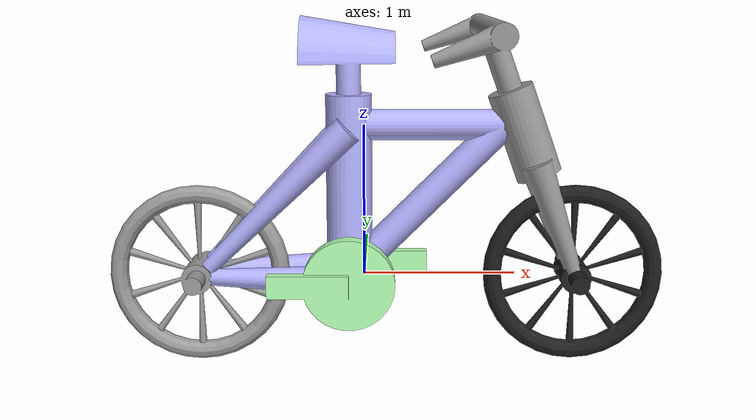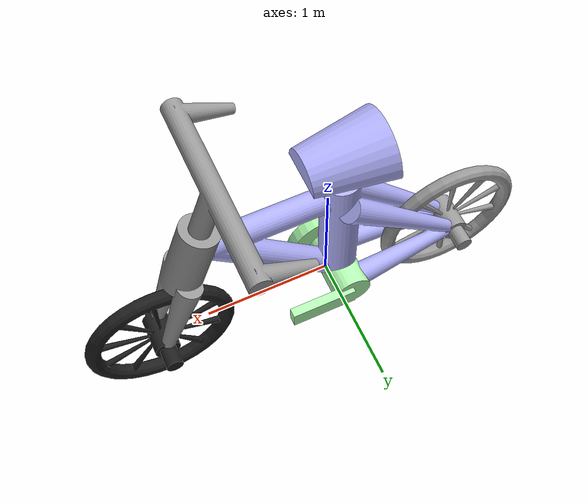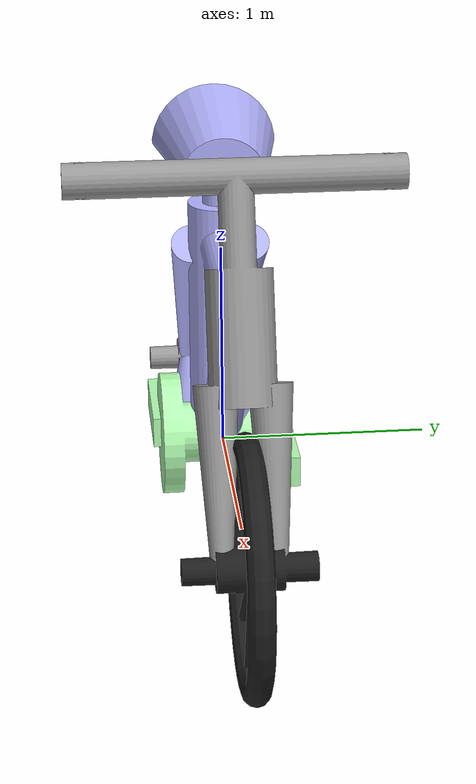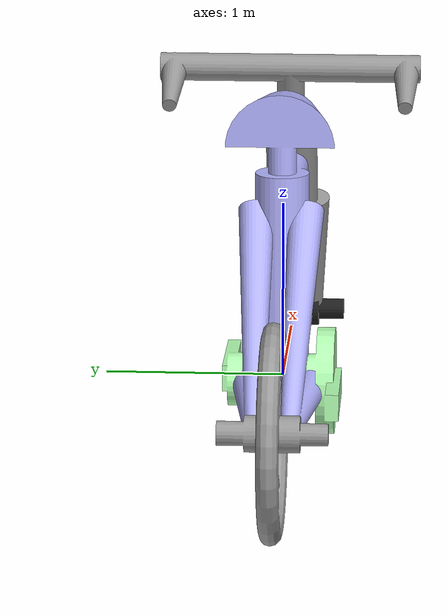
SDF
<?xml version='1.0'?>
<sdf version='1.6'>
  <model name='bicycle'>
    <link name='frame'>
      <inertial>
        <mass>17.5609</mass>
        <inertia>
          <ixx>1.49804</ixx>
          <ixy>0</ixy>
          <ixz>0</ixz>
          <iyy>4.85353</iyy>
          <iyz>0</iyz>
          <izz>3.42476</izz>
        </inertia>
        <pose frame=''>0 0 1 0 -0 0</pose>
      </inertial>
      <pose frame=''>-0.098 0 0 0 -0 0</pose>
      <gravity>1</gravity>
      <self_collide>0</self_collide>
      <kinematic>0</kinematic>
      <enable_wind>0</enable_wind>
      <visual name='visual'>
        <pose frame=''>0 0 0 0 -0 0</pose>
        <geometry>
          <mesh>
            <uri>/home/louise/code/chapulina_gazebo_models/bicycle/meshes/frame.stl</uri>
            <scale>0.01 0.01 0.01</scale>
          </mesh>
        </geometry>
        <material>
          <lighting>1</lighting>
          <script>
            <uri>file://media/materials/scripts/gazebo.material</uri>
            <name>Gazebo/Grey</name>
          </script>
          <shader type='vertex'>
            <normal_map>__default__</normal_map>
          </shader>
          <ambient>0.3 0.3 1 1</ambient>
          <diffuse>0.7 0.7 1 1</diffuse>
          <specular>0.01 0.01 1 1</specular>
          <emissive>0 0 0 1</emissive>
        </material>
        <transparency>0</transparency>
        <cast_shadows>1</cast_shadows>
      </visual>
      <collision name='collision'>
        <laser_retro>0</laser_retro>
        <max_contacts>10</max_contacts>
        <pose frame=''>0 0 0 0 -0 0</pose>
        <geometry>
          <mesh>
            <uri>/home/louise/code/chapulina_gazebo_models/bicycle/meshes/frame.stl</uri>
            <scale>0.01 0.01 0.01</scale>
          </mesh>
        </geometry>
        <surface>
          <friction>
            <ode>
              <mu>1</mu>
              <mu2>1</mu2>
              <fdir1>0 0 0</fdir1>
              <slip1>0</slip1>
              <slip2>0</slip2>
            </ode>
            <torsional>
              <coefficient>1</coefficient>
              <patch_radius>0</patch_radius>
              <surface_radius>0</surface_radius>
              <use_patch_radius>1</use_patch_radius>
              <ode>
                <slip>0</slip>
              </ode>
            </torsional>
          </friction>
          <bounce>
            <restitution_coefficient>0</restitution_coefficient>
            <threshold>1e+06</threshold>
          </bounce>
          <contact>
            <collide_without_contact>0</collide_without_contact>
            <collide_without_contact_bitmask>1</collide_without_contact_bitmask>
            <collide_bitmask>1</collide_bitmask>
            <ode>
              <soft_cfm>0</soft_cfm>
              <soft_erp>0.2</soft_erp>
              <kp>1e+13</kp>
              <kd>1</kd>
              <max_vel>0.01</max_vel>
              <min_depth>0</min_depth>
            </ode>
            <bullet>
              <split_impulse>1</split_impulse>
              <split_impulse_penetration_threshold>-0.01</split_impulse_penetration_threshold>
              <soft_cfm>0</soft_cfm>
              <soft_erp>0.2</soft_erp>
              <kp>1e+13</kp>
              <kd>1</kd>
            </bullet>
          </contact>
        </surface>
      </collision>
    </link>
    <link name='back_wheel'>
      <inertial>
        <mass>8.79038</mass>
        <inertia>
          <ixx>0.610519</ixx>
          <ixy>0</ixy>
          <ixz>0</ixz>
          <iyy>1.19338</iyy>
          <iyz>0</iyz>
          <izz>0.610519</izz>
        </inertia>
        <pose frame=''>0 0 0 0 -0 0</pose>
      </inertial>
      <pose frame=''>-1.098 0 0 0 -0 0</pose>
      <gravity>1</gravity>
      <self_collide>0</self_collide>
      <kinematic>0</kinematic>
      <enable_wind>0</enable_wind>
      <visual name='visual'>
        <pose frame=''>0 0 0 0 -0 0</pose>
        <geometry>
          <mesh>
            <uri>/home/louise/code/chapulina_gazebo_models/bicycle/meshes/wheel.stl</uri>
            <scale>0.01 0.01 0.01</scale>
          </mesh>
        </geometry>
        <material>
          <lighting>1</lighting>
          <script>
            <uri>file://media/materials/scripts/gazebo.material</uri>
            <name>Gazebo/Grey</name>
          </script>
          <shader type='vertex'>
            <normal_map>__default__</normal_map>
          </shader>
          <ambient>0 0 0 1</ambient>
          <diffuse>0 0 0 1</diffuse>
          <specular>0 0 0 1</specular>
          <emissive>0 0 0 1</emissive>
        </material>
        <transparency>0</transparency>
        <cast_shadows>1</cast_shadows>
      </visual>
      <collision name='collision'>
        <laser_retro>0</laser_retro>
        <max_contacts>10</max_contacts>
        <pose frame=''>0 0 0 0 -0 0</pose>
        <geometry>
          <mesh>
            <uri>/home/louise/code/chapulina_gazebo_models/bicycle/meshes/wheel.stl</uri>
            <scale>0.01 0.01 0.01</scale>
          </mesh>
        </geometry>
        <surface>
          <friction>
            <ode>
              <mu>1</mu>
              <mu2>1</mu2>
              <fdir1>0 0 0</fdir1>
              <slip1>0</slip1>
              <slip2>0</slip2>
            </ode>
            <torsional>
              <coefficient>1</coefficient>
              <patch_radius>0</patch_radius>
              <surface_radius>0</surface_radius>
              <use_patch_radius>1</use_patch_radius>
              <ode>
                <slip>0</slip>
              </ode>
            </torsional>
          </friction>
          <bounce>
            <restitution_coefficient>0</restitution_coefficient>
            <threshold>1e+06</threshold>
          </bounce>
          <contact>
            <collide_without_contact>0</collide_without_contact>
            <collide_without_contact_bitmask>1</collide_without_contact_bitmask>
            <collide_bitmask>1</collide_bitmask>
            <ode>
              <soft_cfm>0</soft_cfm>
              <soft_erp>0.2</soft_erp>
              <kp>1e+13</kp>
              <kd>1</kd>
              <max_vel>0.01</max_vel>
              <min_depth>0</min_depth>
            </ode>
            <bullet>
              <split_impulse>1</split_impulse>
              <split_impulse_penetration_threshold>-0.01</split_impulse_penetration_threshold>
              <soft_cfm>0</soft_cfm>
              <soft_erp>0.2</soft_erp>
              <kp>1e+13</kp>
              <kd>1</kd>
            </bullet>
          </contact>
        </surface>
      </collision>
    </link>
    <link name='crank'>
      <inertial>
        <mass>1</mass>
        <inertia>
          <ixx>0.166667</ixx>
          <ixy>0</ixy>
          <ixz>0</ixz>
          <iyy>0.166667</iyy>
          <iyz>0</iyz>
          <izz>0.166667</izz>
        </inertia>
        <pose frame=''>0 0 0 0 -0 0</pose>
      </inertial>
      <pose frame=''>-0.098 0 0 0 -0 0</pose>
      <gravity>1</gravity>
      <self_collide>0</self_collide>
      <kinematic>0</kinematic>
      <enable_wind>0</enable_wind>
      <visual name='visual'>
        <pose frame=''>0 0 0 0 -0 0</pose>
        <geometry>
          <mesh>
            <uri>/home/louise/code/chapulina_gazebo_models/bicycle/meshes/crank.stl</uri>
            <scale>0.01 0.01 0.01</scale>
          </mesh>
        </geometry>
        <material>
          <lighting>1</lighting>
          <script>
            <uri>file://media/materials/scripts/gazebo.material</uri>
            <name>Gazebo/Grey</name>
          </script>
          <shader type='vertex'>
            <normal_map>__default__</normal_map>
          </shader>
          <ambient>0.3 1 0.3 1</ambient>
          <diffuse>0.7 1 0.7 1</diffuse>
          <specular>0.01 1 0.01 1</specular>
          <emissive>0 0 0 1</emissive>
        </material>
        <transparency>0</transparency>
        <cast_shadows>1</cast_shadows>
      </visual>
      <collision name='collision'>
        <laser_retro>0</laser_retro>
        <max_contacts>10</max_contacts>
        <pose frame=''>0 0 0 0 -0 0</pose>
        <geometry>
          <mesh>
            <uri>/home/louise/code/chapulina_gazebo_models/bicycle/meshes/crank.stl</uri>
            <scale>0.01 0.01 0.01</scale>
          </mesh>
        </geometry>
        <surface>
          <friction>
            <ode>
              <mu>1</mu>
              <mu2>1</mu2>
              <fdir1>0 0 0</fdir1>
              <slip1>0</slip1>
              <slip2>0</slip2>
            </ode>
            <torsional>
              <coefficient>1</coefficient>
              <patch_radius>0</patch_radius>
              <surface_radius>0</surface_radius>
              <use_patch_radius>1</use_patch_radius>
              <ode>
                <slip>0</slip>
              </ode>
            </torsional>
          </friction>
          <bounce>
            <restitution_coefficient>0</restitution_coefficient>
            <threshold>1e+06</threshold>
          </bounce>
          <contact>
            <collide_without_contact>0</collide_without_contact>
            <collide_without_contact_bitmask>1</collide_without_contact_bitmask>
            <collide_bitmask>1</collide_bitmask>
            <ode>
              <soft_cfm>0</soft_cfm>
              <soft_erp>0.2</soft_erp>
              <kp>1e+13</kp>
              <kd>1</kd>
              <max_vel>0.01</max_vel>
              <min_depth>0</min_depth>
            </ode>
            <bullet>
              <split_impulse>1</split_impulse>
              <split_impulse_penetration_threshold>-0.01</split_impulse_penetration_threshold>
              <soft_cfm>0</soft_cfm>
              <soft_erp>0.2</soft_erp>
              <kp>1e+13</kp>
              <kd>1</kd>
            </bullet>
          </contact>
        </surface>
      </collision>
    </link>
    <link name='front_wheel'>
      <inertial>
        <mass>8.79038</mass>
        <inertia>
          <ixx>0.610519</ixx>
          <ixy>0</ixy>
          <ixz>0</ixz>
          <iyy>1.19338</iyy>
          <iyz>0</iyz>
          <izz>0.610519</izz>
        </inertia>
        <pose frame=''>0 0 0 0 -0 0</pose>
      </inertial>
      <pose frame=''>1.392 0 0 0 -0 0</pose>
      <gravity>1</gravity>
      <self_collide>0</self_collide>
      <kinematic>0</kinematic>
      <enable_wind>0</enable_wind>
      <visual name='visual'>
        <pose frame=''>0 0 0 0 -0 0</pose>
        <geometry>
          <mesh>
            <uri>/home/louise/code/chapulina_gazebo_models/bicycle/meshes/wheel.stl</uri>
            <scale>0.01 0.01 0.01</scale>
          </mesh>
        </geometry>
        <material>
          <lighting>1</lighting>
          <script>
            <uri>file://media/materials/scripts/gazebo.material</uri>
            <name>Gazebo/Black</name>
          </script>
          <shader type='vertex'>
            <normal_map>__default__</normal_map>
          </shader>
          <ambient>0 0 0 1</ambient>
          <diffuse>0 0 0 1</diffuse>
          <specular>0 0 0 1</specular>
          <emissive>0 0 0 1</emissive>
        </material>
        <transparency>0</transparency>
        <cast_shadows>1</cast_shadows>
      </visual>
      <collision name='collision'>
        <laser_retro>0</laser_retro>
        <max_contacts>10</max_contacts>
        <pose frame=''>0 0 0 0 -0 0</pose>
        <geometry>
          <mesh>
            <uri>/home/louise/code/chapulina_gazebo_models/bicycle/meshes/wheel.stl</uri>
            <scale>0.01 0.01 0.01</scale>
          </mesh>
        </geometry>
        <surface>
          <friction>
            <ode>
              <mu>1</mu>
              <mu2>1</mu2>
              <fdir1>0 0 0</fdir1>
              <slip1>0</slip1>
              <slip2>0</slip2>
            </ode>
            <torsional>
              <coefficient>1</coefficient>
              <patch_radius>0</patch_radius>
              <surface_radius>0</surface_radius>
              <use_patch_radius>1</use_patch_radius>
              <ode>
                <slip>0</slip>
              </ode>
            </torsional>
          </friction>
          <bounce>
            <restitution_coefficient>0</restitution_coefficient>
            <threshold>1e+06</threshold>
          </bounce>
          <contact>
            <collide_without_contact>0</collide_without_contact>
            <collide_without_contact_bitmask>1</collide_without_contact_bitmask>
            <collide_bitmask>1</collide_bitmask>
            <ode>
              <soft_cfm>0</soft_cfm>
              <soft_erp>0.2</soft_erp>
              <kp>1e+13</kp>
              <kd>1</kd>
              <max_vel>0.01</max_vel>
              <min_depth>0</min_depth>
            </ode>
            <bullet>
              <split_impulse>1</split_impulse>
              <split_impulse_penetration_threshold>-0.01</split_impulse_penetration_threshold>
              <soft_cfm>0</soft_cfm>
              <soft_erp>0.2</soft_erp>
              <kp>1e+13</kp>
              <kd>1</kd>
            </bullet>
          </contact>
        </surface>
      </collision>
    </link>
    <link name='steer'>
      <inertial>
        <mass>11.2879</mass>
        <inertia>
          <ixx>1.03759</ixx>
          <ixy>0</ixy>
          <ixz>0</ixz>
          <iyy>1.14743</iyy>
          <iyz>0</iyz>
          <izz>0.303705</izz>
        </inertia>
        <pose frame=''>1.1 0 1 0 -0 0</pose>
      </inertial>
      <pose frame=''>-0.098 0 0 0 -0 0</pose>
      <gravity>1</gravity>
      <self_collide>0</self_collide>
      <kinematic>0</kinematic>
      <enable_wind>0</enable_wind>
      <visual name='visual'>
        <pose frame=''>0 0 0 0 -0 0</pose>
        <geometry>
          <mesh>
            <uri>/home/louise/code/chapulina_gazebo_models/bicycle/meshes/steer.stl</uri>
            <scale>0.01 0.01 0.01</scale>
          </mesh>
        </geometry>
        <material>
          <lighting>1</lighting>
          <script>
            <uri>file://media/materials/scripts/gazebo.material</uri>
            <name>Gazebo/Grey</name>
          </script>
          <shader type='vertex'>
            <normal_map>__default__</normal_map>
          </shader>
          <ambient>1 1 1 1</ambient>
          <diffuse>1 1 1 1</diffuse>
          <specular>1 1 1 1</specular>
          <emissive>0 0 0 1</emissive>
        </material>
        <transparency>0</transparency>
        <cast_shadows>1</cast_shadows>
      </visual>
      <collision name='collision'>
        <laser_retro>0</laser_retro>
        <max_contacts>10</max_contacts>
        <pose frame=''>0 0 0 0 -0 0</pose>
        <geometry>
          <mesh>
            <uri>/home/louise/code/chapulina_gazebo_models/bicycle/meshes/steer.stl</uri>
            <scale>0.01 0.01 0.01</scale>
          </mesh>
        </geometry>
        <surface>
          <friction>
            <ode>
              <mu>1</mu>
              <mu2>1</mu2>
              <fdir1>0 0 0</fdir1>
              <slip1>0</slip1>
              <slip2>0</slip2>
            </ode>
            <torsional>
              <coefficient>1</coefficient>
              <patch_radius>0</patch_radius>
              <surface_radius>0</surface_radius>
              <use_patch_radius>1</use_patch_radius>
              <ode>
                <slip>0</slip>
              </ode>
            </torsional>
          </friction>
          <bounce>
            <restitution_coefficient>0</restitution_coefficient>
            <threshold>1e+06</threshold>
          </bounce>
          <contact>
            <collide_without_contact>0</collide_without_contact>
            <collide_without_contact_bitmask>1</collide_without_contact_bitmask>
            <collide_bitmask>1</collide_bitmask>
            <ode>
              <soft_cfm>0</soft_cfm>
              <soft_erp>0.2</soft_erp>
              <kp>1e+13</kp>
              <kd>1</kd>
              <max_vel>0.01</max_vel>
              <min_depth>0</min_depth>
            </ode>
            <bullet>
              <split_impulse>1</split_impulse>
              <split_impulse_penetration_threshold>-0.01</split_impulse_penetration_threshold>
              <soft_cfm>0</soft_cfm>
              <soft_erp>0.2</soft_erp>
              <kp>1e+13</kp>
              <kd>1</kd>
            </bullet>
          </contact>
        </surface>
      </collision>
    </link>
    <joint name='back_wheel_joint' type='revolute'>
      <parent>frame</parent>
      <child>back_wheel</child>
      <pose frame=''>0 0 0 0 -0 0</pose>
      <axis>
        <xyz>0 1 0</xyz>
        <use_parent_model_frame>0</use_parent_model_frame>
        <limit>
          <lower>-1.79769e+308</lower>
          <upper>1.79769e+308</upper>
          <effort>-1</effort>
          <velocity>-1</velocity>
        </limit>
        <dynamics>
          <spring_reference>0</spring_reference>
          <spring_stiffness>0</spring_stiffness>
          <damping>0</damping>
          <friction>0</friction>
        </dynamics>
      </axis>
      <physics>
        <ode>
          <limit>
            <cfm>0</cfm>
            <erp>0.2</erp>
          </limit>
          <suspension>
            <cfm>0</cfm>
            <erp>0.2</erp>
          </suspension>
        </ode>
      </physics>
    </joint>
    <joint name='crank_joint' type='revolute'>
      <parent>frame</parent>
      <child>crank</child>
      <pose frame=''>0 0 0 0 -0 0</pose>
      <axis>
        <xyz>0 1 0</xyz>
        <use_parent_model_frame>0</use_parent_model_frame>
        <limit>
          <lower>-1.79769e+308</lower>
          <upper>1.79769e+308</upper>
          <effort>-1</effort>
          <velocity>-1</velocity>
        </limit>
        <dynamics>
          <spring_reference>0</spring_reference>
          <spring_stiffness>0</spring_stiffness>
          <damping>0</damping>
          <friction>0</friction>
        </dynamics>
      </axis>
      <physics>
        <ode>
          <limit>
            <cfm>0</cfm>
            <erp>0.2</erp>
          </limit>
          <suspension>
            <cfm>0</cfm>
            <erp>0.2</erp>
          </suspension>
        </ode>
      </physics>
    </joint>
    <joint name='front_wheel_joint' type='revolute'>
      <parent>steer</parent>
      <child>front_wheel</child>
      <pose frame=''>0 0 0 0 -0 0</pose>
      <axis>
        <xyz>0 1 0</xyz>
        <use_parent_model_frame>0</use_parent_model_frame>
        <limit>
          <lower>-1.79769e+308</lower>
          <upper>1.79769e+308</upper>
          <effort>-1</effort>
          <velocity>-1</velocity>
        </limit>
        <dynamics>
          <spring_reference>0</spring_reference>
          <spring_stiffness>0</spring_stiffness>
          <damping>0</damping>
          <friction>0</friction>
        </dynamics>
      </axis>
      <physics>
        <ode>
          <limit>
            <cfm>0</cfm>
            <erp>0.2</erp>
          </limit>
          <suspension>
            <cfm>0</cfm>
            <erp>0.2</erp>
          </suspension>
        </ode>
      </physics>
    </joint>
    <joint name='steer_joint' type='revolute'>
      <parent>frame</parent>
      <child>steer</child>
      <pose frame=''>1.12 0 1 0 -0 0</pose>
      <axis>
        <xyz>-0.35 0 1</xyz>
        <use_parent_model_frame>0</use_parent_model_frame>
        <limit>
          <lower>-1.79769e+308</lower>
          <upper>1.79769e+308</upper>
          <effort>-1</effort>
          <velocity>-1</velocity>
        </limit>
        <dynamics>
          <spring_reference>0</spring_reference>
          <spring_stiffness>0</spring_stiffness>
          <damping>0</damping>
          <friction>0</friction>
        </dynamics>
      </axis>
      <physics>
        <ode>
          <limit>
            <cfm>0</cfm>
            <erp>0.2</erp>
          </limit>
          <suspension>
            <cfm>0</cfm>
            <erp>0.2</erp>
          </suspension>
        </ode>
      </physics>
    </joint>
    <static>0</static>
    <allow_auto_disable>1</allow_auto_disable>
    <plugin name='keystojoints' filename='libKeysToJointsPlugin.so'>
      <map key='16777235' joint='back_wheel_joint' scale='10000' type='force' kp='100' ki='0' kd='20'/>
      <map key='16777237' joint='back_wheel_joint' scale='-10000' type='force' kp='100' ki='0' kd='20'/>
      <map key='16777234' joint='steer_joint' scale='1000' type='force' kp='1000' ki='0' kd='20'/>
      <map key='16777236' joint='steer_joint' scale='-1000' type='force' kp='1000' ki='0' kd='20'/>
    </plugin>
  </model>
</sdf>
